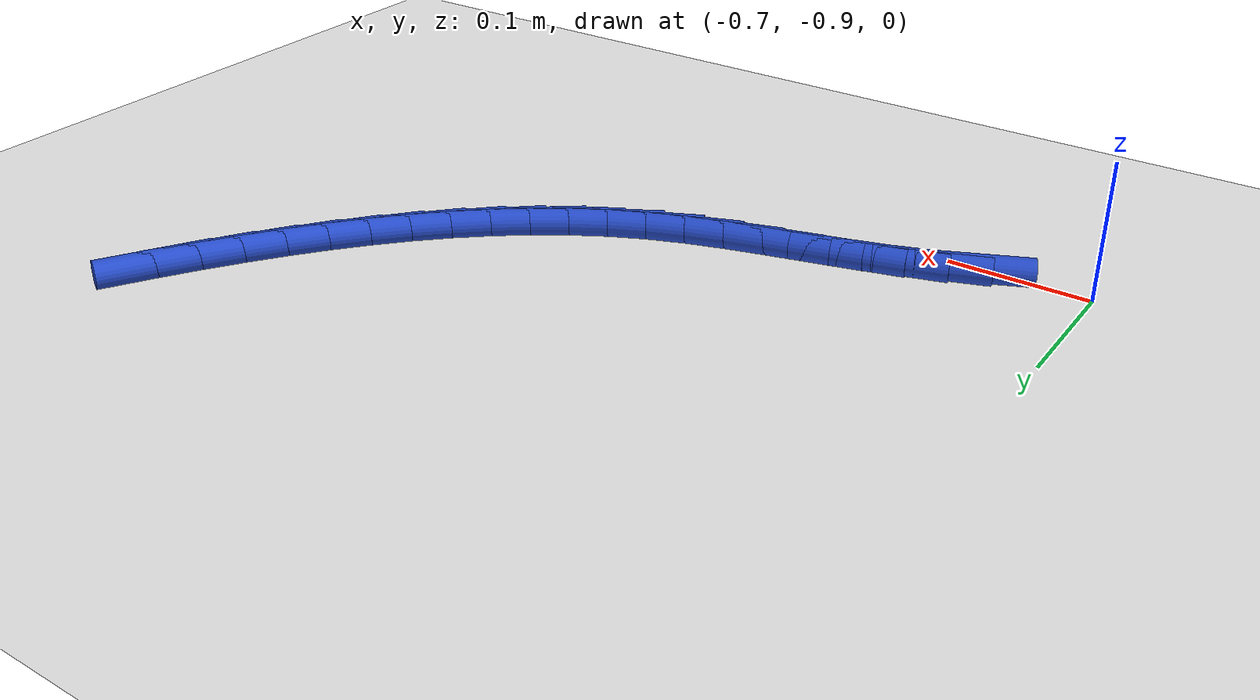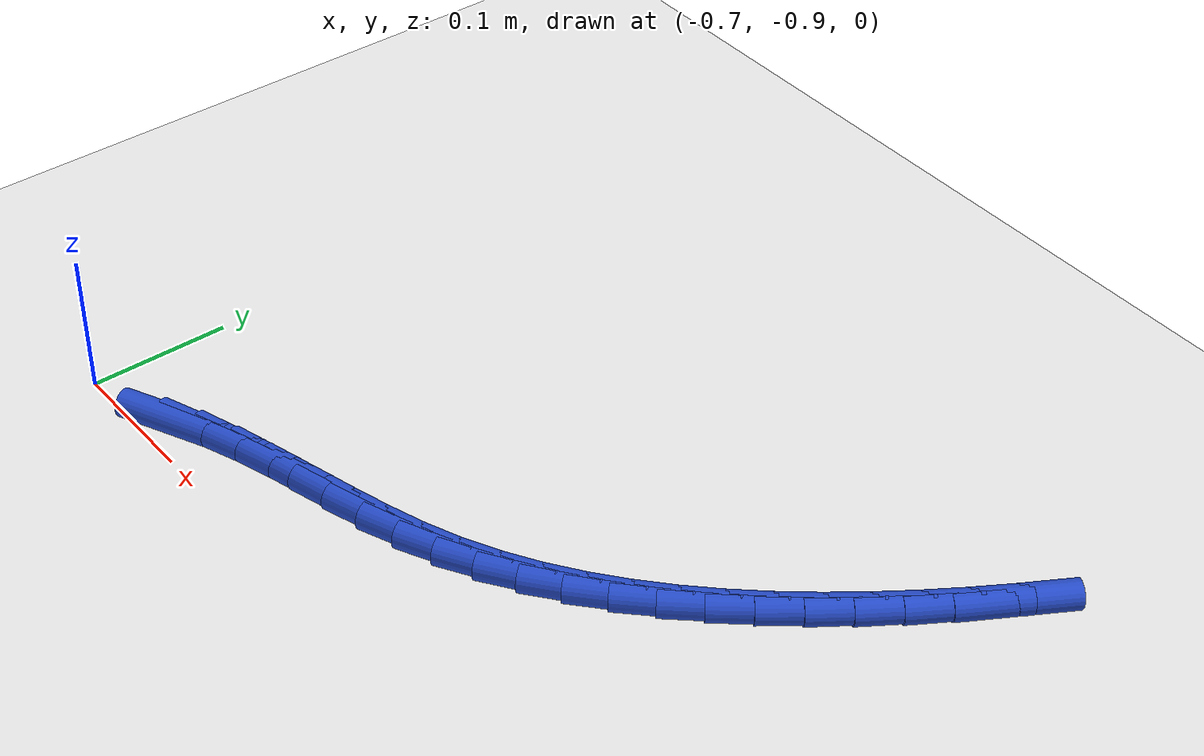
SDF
<sdf version="1.6">
 <world name="default">
  <model name="ground_plane">
   <static>1</static>
   <link name="link">
    <collision name="collision">
     <geometry><plane><normal>0 0 1</normal><size>100 100</size></plane></geometry>
     <surface><friction><ode><mu>100</mu><mu2>50</mu2></ode></friction></surface>
    </collision>
    <visual name="visual">
     <cast_shadows>0</cast_shadows>
     <geometry><plane><normal>0 0 1</normal><size>100 100</size></plane></geometry>
     <material>
      <script><uri>file://media/materials/scripts/gazebo.material</uri><name>Gazebo/WhiteGlow</name></script>
     </material>
    </visual>
   </link>
  </model>
  <model name="line">
   <link name="link_209">
    <pose>-0.6244006311528829 -0.8825231426921267 0.01 0 1.57 0.4385270033510989</pose>
    <collision name="collision">
     <geometry><cylinder><radius>0.01</radius><length>0.08</length></cylinder></geometry>
    </collision>
    <visual name="visual">
     <material>
      <script><name>Gazebo/Blue</name><uri>file://media/materials/scripts/gazebo.material</uri></script>
     </material>
     <geometry><cylinder><radius>0.01</radius><length>0.08</length></cylinder></geometry>
    </visual>
   </link>
   <link name="link_210">
    <pose>-0.5992920351227314 -0.8707476553318683 0.01 0 1.57 0.3563777934136522</pose>
    <collision name="collision">
     <geometry><cylinder><radius>0.01</radius><length>0.08</length></cylinder></geometry>
    </collision>
    <visual name="visual">
     <material>
      <script><name>Gazebo/Blue</name><uri>file://media/materials/scripts/gazebo.material</uri></script>
     </material>
     <geometry><cylinder><radius>0.01</radius><length>0.08</length></cylinder></geometry>
    </visual>
   </link>
   <link name="link_211">
    <pose>-0.5730056306394385 -0.8609619349253439 0.01 0 1.57 0.3001778867417133</pose>
    <collision name="collision">
     <geometry><cylinder><radius>0.01</radius><length>0.08</length></cylinder></geometry>
    </collision>
    <visual name="visual">
     <material>
      <script><name>Gazebo/Blue</name><uri>file://media/materials/scripts/gazebo.material</uri></script>
     </material>
     <geometry><cylinder><radius>0.01</radius><length>0.08</length></cylinder></geometry>
    </visual>
   </link>
   <link name="link_212">
    <pose>-0.5458826411591495 -0.8525665242883008 0.01 0 1.57 0.26888134296555743</pose>
    <collision name="collision">
     <geometry><cylinder><radius>0.01</radius><length>0.08</length></cylinder></geometry>
    </collision>
    <visual name="visual">
     <material>
      <script><name>Gazebo/Blue</name><uri>file://media/materials/scripts/gazebo.material</uri></script>
     </material>
     <geometry><cylinder><radius>0.01</radius><length>0.08</length></cylinder></geometry>
    </visual>
   </link>
   <link name="link_213">
    <pose>-0.5182675768898983 -0.8449570782438249 0.01 0 1.57 0.2614247235662124</pose>
    <collision name="collision">
     <geometry><cylinder><radius>0.01</radius><length>0.08</length></cylinder></geometry>
    </collision>
    <visual name="visual">
     <material>
      <script><name>Gazebo/Blue</name><uri>file://media/materials/scripts/gazebo.material</uri></script>
     </material>
     <geometry><cylinder><radius>0.01</radius><length>0.08</length></cylinder></geometry>
    </visual>
   </link>
   <link name="link_214">
    <pose>-0.49050494803971967 -0.8375292516150031 0.01 0 1.57 0.2774489980354379</pose>
    <collision name="collision">
     <geometry><cylinder><radius>0.01</radius><length>0.08</length></cylinder></geometry>
    </collision>
    <visual name="visual">
     <material>
      <script><name>Gazebo/Blue</name><uri>file://media/materials/scripts/gazebo.material</uri></script>
     </material>
     <geometry><cylinder><radius>0.01</radius><length>0.08</length></cylinder></geometry>
    </visual>
   </link>
   <link name="link_215">
    <pose>-0.4629392648166478 -0.8296786992249217 0.01 0 1.57 0.3173997639058532</pose>
    <collision name="collision">
     <geometry><cylinder><radius>0.01</radius><length>0.08</length></cylinder></geometry>
    </collision>
    <visual name="visual">
     <material>
      <script><name>Gazebo/Blue</name><uri>file://media/materials/scripts/gazebo.material</uri></script>
     </material>
     <geometry><cylinder><radius>0.01</radius><length>0.08</length></cylinder></geometry>
    </visual>
   </link>
   <link name="link_216">
    <pose>-0.4359150374287172 -0.8208010758966666 0.01 0 1.57 0.38208760671763875</pose>
    <collision name="collision">
     <geometry><cylinder><radius>0.01</radius><length>0.08</length></cylinder></geometry>
    </collision>
    <visual name="visual">
     <material>
      <script><name>Gazebo/Blue</name><uri>file://media/materials/scripts/gazebo.material</uri></script>
     </material>
     <geometry><cylinder><radius>0.01</radius><length>0.08</length></cylinder></geometry>
    </visual>
   </link>
   <link name="link_217">
    <pose>-0.4097743048904483 -0.810296804475198 0.01 0 1.57 0.4612596430085366</pose>
    <collision name="collision">
     <geometry><cylinder><radius>0.01</radius><length>0.08</length></cylinder></geometry>
    </collision>
    <visual name="visual">
     <material>
      <script><name>Gazebo/Blue</name><uri>file://media/materials/scripts/gazebo.material</uri></script>
     </material>
     <geometry><cylinder><radius>0.01</radius><length>0.08</length></cylinder></geometry>
    </visual>
   </link>
   <link name="link_218">
    <pose>-0.38471602548928596 -0.7978423736143322 0.01 0 1.57 0.5376090067432573</pose>
    <collision name="collision">
     <geometry><cylinder><radius>0.01</radius><length>0.08</length></cylinder></geometry>
    </collision>
    <visual name="visual">
     <material>
      <script><name>Gazebo/Blue</name><uri>file://media/materials/scripts/gazebo.material</uri></script>
     </material>
     <geometry><cylinder><radius>0.01</radius><length>0.08</length></cylinder></geometry>
    </visual>
   </link>
   <link name="link_219">
    <pose>-0.3607203167400236 -0.7835365123083443 0.01 0 1.57 0.6090540121641791</pose>
    <collision name="collision">
     <geometry><cylinder><radius>0.01</radius><length>0.08</length></cylinder></geometry>
    </collision>
    <visual name="visual">
     <material>
      <script><name>Gazebo/Blue</name><uri>file://media/materials/scripts/gazebo.material</uri></script>
     </material>
     <geometry><cylinder><radius>0.01</radius><length>0.08</length></cylinder></geometry>
    </visual>
   </link>
   <link name="link_220">
    <pose>-0.33774880997506246 -0.7675136175481636 0.01 0 1.57 0.6752120377936291</pose>
    <collision name="collision">
     <geometry><cylinder><radius>0.01</radius><length>0.08</length></cylinder></geometry>
    </collision>
    <visual name="visual">
     <material>
      <script><name>Gazebo/Blue</name><uri>file://media/materials/scripts/gazebo.material</uri></script>
     </material>
     <geometry><cylinder><radius>0.01</radius><length>0.08</length></cylinder></geometry>
    </visual>
   </link>
   <link name="link_221">
    <pose>-0.31576313652680443 -0.749908086324719 0.01 0 1.57 0.7359413916374424</pose>
    <collision name="collision">
     <geometry><cylinder><radius>0.01</radius><length>0.08</length></cylinder></geometry>
    </collision>
    <visual name="visual">
     <material>
      <script><name>Gazebo/Blue</name><uri>file://media/materials/scripts/gazebo.material</uri></script>
     </material>
     <geometry><cylinder><radius>0.01</radius><length>0.08</length></cylinder></geometry>
    </visual>
   </link>
   <link name="link_222">
    <pose>-0.2947249277276506 -0.7308543156289394 0.01 0 1.57 0.7912874691696069</pose>
    <collision name="collision">
     <geometry><cylinder><radius>0.01</radius><length>0.08</length></cylinder></geometry>
    </collision>
    <visual name="visual">
     <material>
      <script><name>Gazebo/Blue</name><uri>file://media/materials/scripts/gazebo.material</uri></script>
     </material>
     <geometry><cylinder><radius>0.01</radius><length>0.08</length></cylinder></geometry>
    </visual>
   </link>
   <link name="link_223">
    <pose>-0.2745958149100028 -0.7104867024517544 0.01 0 1.57 0.8414269072582296</pose>
    <collision name="collision">
     <geometry><cylinder><radius>0.01</radius><length>0.08</length></cylinder></geometry>
    </collision>
    <visual name="visual">
     <material>
      <script><name>Gazebo/Blue</name><uri>file://media/materials/scripts/gazebo.material</uri></script>
     </material>
     <geometry><cylinder><radius>0.01</radius><length>0.08</length></cylinder></geometry>
    </visual>
   </link>
   <link name="link_224">
    <pose>-0.2553374294062626 -0.6889396437840928 0.01 0 1.57 0.8866178538000157</pose>
    <collision name="collision">
     <geometry><cylinder><radius>0.01</radius><length>0.08</length></cylinder></geometry>
    </collision>
    <visual name="visual">
     <material>
      <script><name>Gazebo/Blue</name><uri>file://media/materials/scripts/gazebo.material</uri></script>
     </material>
     <geometry><cylinder><radius>0.01</radius><length>0.08</length></cylinder></geometry>
    </visual>
   </link>
   <link name="link_225">
    <pose>-0.23691140254883136 -0.666347536616884 0.01 0 1.57 0.927159952373563</pose>
    <collision name="collision">
     <geometry><cylinder><radius>0.01</radius><length>0.08</length></cylinder></geometry>
    </collision>
    <visual name="visual">
     <material>
      <script><name>Gazebo/Blue</name><uri>file://media/materials/scripts/gazebo.material</uri></script>
     </material>
     <geometry><cylinder><radius>0.01</radius><length>0.08</length></cylinder></geometry>
    </visual>
   </link>
   <link name="link_226">
    <pose>-0.2192793656701107 -0.6428447779410565 0.01 0 1.57 0.9633644878979142</pose>
    <collision name="collision">
     <geometry><cylinder><radius>0.01</radius><length>0.08</length></cylinder></geometry>
    </collision>
    <visual name="visual">
     <material>
      <script><name>Gazebo/Blue</name><uri>file://media/materials/scripts/gazebo.material</uri></script>
     </material>
     <geometry><cylinder><radius>0.01</radius><length>0.08</length></cylinder></geometry>
    </visual>
   </link>
   <link name="link_227">
    <pose>-0.20240295010250223 -0.6185657647475401 0.01 0 1.57 0.9955334217109711</pose>
    <collision name="collision">
     <geometry><cylinder><radius>0.01</radius><length>0.08</length></cylinder></geometry>
    </collision>
    <visual name="visual">
     <material>
      <script><name>Gazebo/Blue</name><uri>file://media/materials/scripts/gazebo.material</uri></script>
     </material>
     <geometry><cylinder><radius>0.01</radius><length>0.08</length></cylinder></geometry>
    </visual>
   </link>
   <link name="link_228">
    <pose>-0.1862437871784075 -0.5936448940272635 0.01 0 1.57 1.0239453854284508</pose>
    <collision name="collision">
     <geometry><cylinder><radius>0.01</radius><length>0.08</length></cylinder></geometry>
    </collision>
    <visual name="visual">
     <material>
      <script><name>Gazebo/Blue</name><uri>file://media/materials/scripts/gazebo.material</uri></script>
     </material>
     <geometry><cylinder><radius>0.01</radius><length>0.08</length></cylinder></geometry>
    </visual>
   </link>
   <link name="link_229">
    <pose>-0.1707635082302279 -0.568216562771156 0.01 0 1.57 1.0488466628308815</pose>
    <collision name="collision">
     <geometry><cylinder><radius>0.01</radius><length>0.08</length></cylinder></geometry>
    </collision>
    <visual name="visual">
     <material>
      <script><name>Gazebo/Blue</name><uri>file://media/materials/scripts/gazebo.material</uri></script>
     </material>
     <geometry><cylinder><radius>0.01</radius><length>0.08</length></cylinder></geometry>
    </visual>
   </link>
  </model>
 </world>
</sdf>
